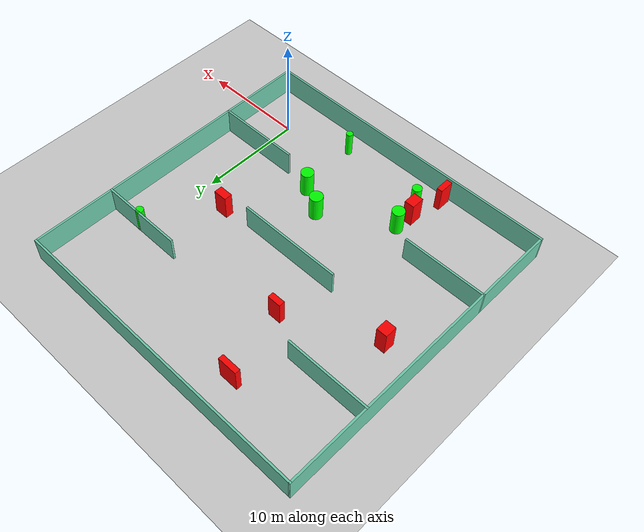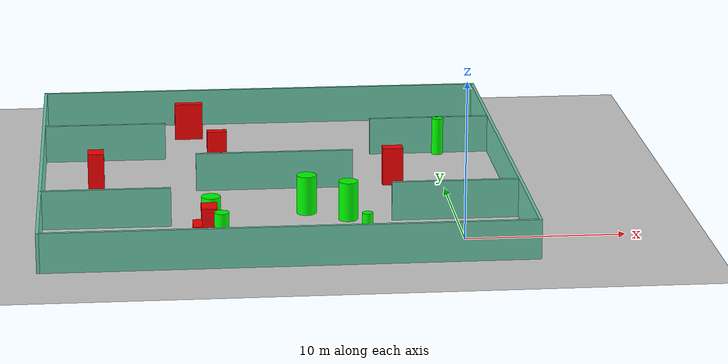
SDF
<sdf version="1.7">
 <world name="default">
  <light name="sun" type="directional">
   <pose>0 0 10 0 -0 0</pose>
   <diffuse>0.8 0.8 0.8 1</diffuse>
   <specular>0.2 0.2 0.2 1</specular>
   <attenuation>
    <range>1000</range>
    <constant>0.9</constant>
    <linear>0.01</linear>
    <quadratic>0.001</quadratic>
   </attenuation>
   <direction>-0.5 0.1 -0.9</direction>
   <spot><inner_angle>0</inner_angle><outer_angle>0</outer_angle><falloff>0</falloff></spot>
  </light>
  <model name="ground_plane">
   <static>1</static>
   <link name="link">
    <collision name="collision">
     <geometry><plane><normal>0 0 1</normal><size>100 100</size></plane></geometry>
     <surface>
      <contact><collide_bitmask>65535</collide_bitmask></contact>
      <friction><ode><mu>100</mu><mu2>50</mu2></ode></friction>
     </surface>
    </collision>
    <visual name="visual">
     <cast_shadows>0</cast_shadows>
     <geometry><plane><normal>0 0 1</normal><size>100 100</size></plane></geometry>
     <material>
      <script><uri>file://media/materials/scripts/gazebo.material</uri><name>Gazebo/Grey</name></script>
     </material>
    </visual>
   </link>
  </model>
  <gravity>0 0 -9.8</gravity>
  <magnetic_field>6e-06 2.3e-05 -4.2e-05</magnetic_field>
  <atmosphere type="adiabatic"/>
  <physics type="ode">
   <max_step_size>0.001</max_step_size>
   <real_time_factor>1</real_time_factor>
   <real_time_update_rate>1000</real_time_update_rate>
  </physics>
  <scene><ambient>0.4 0.4 0.4 1</ambient><background>0.7 0.7 0.7 1</background><shadows>1</shadows></scene>
  <spherical_coordinates>
   <surface_model>EARTH_WGS84</surface_model>
   <latitude_deg>0</latitude_deg>
   <longitude_deg>0</longitude_deg>
   <elevation>0</elevation>
   <heading_deg>0</heading_deg>
  </spherical_coordinates>
  <model name="my_base_walls">
   <link name="Wall_10">
    <collision name="Wall_10_Collision">
     <geometry><box><size>8.2 0.2 2.5</size></box></geometry>
     <pose>0 0 1.25 0 -0 0</pose>
    </collision>
    <visual name="Wall_10_Visual">
     <pose>0 0 1.25 0 -0 0</pose>
     <geometry><box><size>8.2 0.2 2.5</size></box></geometry>
     <material>
      <script><uri>file://media/materials/scripts/gazebo.material</uri><name>Gazebo/Grey</name></script>
      <ambient>0.435294 0.796078 0.67451 1</ambient>
     </material>
     <meta><layer>0</layer></meta>
    </visual>
    <pose>-11 -7 0 0 -0 0</pose>
   </link>
   <link name="Wall_12">
    <collision name="Wall_12_Collision">
     <geometry><box><size>8.2 0.2 2.5</size></box></geometry>
     <pose>0 0 1.25 0 -0 0</pose>
    </collision>
    <visual name="Wall_12_Visual">
     <pose>0 0 1.25 0 -0 0</pose>
     <geometry><box><size>8.2 0.2 2.5</size></box></geometry>
     <material>
      <script><uri>file://media/materials/scripts/gazebo.material</uri><name>Gazebo/Grey</name></script>
      <ambient>0.435294 0.796078 0.67451 1</ambient>
     </material>
     <meta><layer>0</layer></meta>
    </visual>
    <pose>-11 7 0 0 -0 0</pose>
   </link>
   <link name="Wall_14">
    <collision name="Wall_14_Collision">
     <geometry><box><size>8.2 0.2 2.5</size></box></geometry>
     <pose>0 0 1.25 0 -0 0</pose>
    </collision>
    <visual name="Wall_14_Visual">
     <pose>0 0 1.25 0 -0 0</pose>
     <geometry><box><size>8.2 0.2 2.5</size></box></geometry>
     <material>
      <script><uri>file://media/materials/scripts/gazebo.material</uri><name>Gazebo/Grey</name></script>
      <ambient>0.435294 0.796078 0.67451 1</ambient>
     </material>
     <meta><layer>0</layer></meta>
    </visual>
    <pose>11 7 0 0 -0 3.14159</pose>
   </link>
   <link name="Wall_16">
    <collision name="Wall_16_Collision">
     <geometry><box><size>10.2 0.2 2.5</size></box></geometry>
     <pose>0 0 1.25 0 -0 0</pose>
    </collision>
    <visual name="Wall_16_Visual">
     <pose>0 0 1.25 0 -0 0</pose>
     <geometry><box><size>10.2 0.2 2.5</size></box></geometry>
     <material>
      <script><uri>file://media/materials/scripts/gazebo.material</uri><name>Gazebo/Grey</name></script>
      <ambient>0.435294 0.796078 0.67451 1</ambient>
     </material>
     <meta><layer>0</layer></meta>
    </visual>
    <pose>0 0 0 0 -0 3.14159</pose>
   </link>
   <link name="Wall_2">
    <collision name="Wall_2_Collision">
     <geometry><box><size>30.2 0.2 2.5</size></box></geometry>
     <pose>0 0 1.25 0 -0 0</pose>
    </collision>
    <visual name="Wall_2_Visual">
     <pose>0 0 1.25 0 -0 0</pose>
     <geometry><box><size>30.2 0.2 2.5</size></box></geometry>
     <material>
      <script><uri>file://media/materials/scripts/gazebo.material</uri><name>Gazebo/Grey</name></script>
      <ambient>0.435294 0.796078 0.67451 1</ambient>
     </material>
     <meta><layer>0</layer></meta>
    </visual>
    <pose>0 -15 0 0 -0 3.14159</pose>
   </link>
   <link name="Wall_3">
    <collision name="Wall_3_Collision">
     <geometry><box><size>30.2 0.2 2.5</size></box></geometry>
     <pose>0 0 1.25 0 -0 0</pose>
    </collision>
    <visual name="Wall_3_Visual">
     <pose>0 0 1.25 0 -0 0</pose>
     <geometry><box><size>30.2 0.2 2.5</size></box></geometry>
     <material>
      <script><uri>file://media/materials/scripts/gazebo.material</uri><name>Gazebo/Grey</name></script>
      <ambient>0.435294 0.796078 0.67451 1</ambient>
     </material>
     <meta><layer>0</layer></meta>
    </visual>
    <pose>-15 0 0 0 -0 1.5708</pose>
   </link>
   <link name="Wall_4">
    <collision name="Wall_4_Collision">
     <geometry><box><size>30.2 0.2 2.5</size></box></geometry>
     <pose>0 0 1.25 0 -0 0</pose>
    </collision>
    <visual name="Wall_4_Visual">
     <pose>0 0 1.25 0 -0 0</pose>
     <geometry><box><size>30.2 0.2 2.5</size></box></geometry>
     <material>
      <script><uri>file://media/materials/scripts/gazebo.material</uri><name>Gazebo/Grey</name></script>
      <ambient>0.435294 0.796078 0.67451 1</ambient>
     </material>
     <meta><layer>0</layer></meta>
    </visual>
    <pose>0 15 0 0 -0 0</pose>
   </link>
   <link name="Wall_6">
    <collision name="Wall_6_Collision">
     <geometry><box><size>30.2 0.2 2.5</size></box></geometry>
     <pose>0 0 1.25 0 -0 0</pose>
    </collision>
    <visual name="Wall_6_Visual">
     <pose>0 0 1.25 0 -0 0</pose>
     <geometry><box><size>30.2 0.2 2.5</size></box></geometry>
     <material>
      <script><uri>file://media/materials/scripts/gazebo.material</uri><name>Gazebo/Grey</name></script>
      <ambient>0.435294 0.796078 0.67451 1</ambient>
     </material>
     <meta><layer>0</layer></meta>
    </visual>
    <pose>15 0 0 0 -0 1.5708</pose>
   </link>
   <link name="Wall_8">
    <collision name="Wall_8_Collision">
     <geometry><box><size>8.2 0.2 2.5</size></box></geometry>
     <pose>0 0 1.25 0 -0 0</pose>
    </collision>
    <visual name="Wall_8_Visual">
     <pose>0 0 1.25 0 -0 0</pose>
     <geometry><box><size>8.2 0.2 2.5</size></box></geometry>
     <material>
      <script><uri>file://media/materials/scripts/gazebo.material</uri><name>Gazebo/Grey</name></script>
      <ambient>0.435294 0.796078 0.67451 1</ambient>
     </material>
     <meta><layer>0</layer></meta>
    </visual>
    <pose>11 -7 0 0 -0 3.14159</pose>
   </link>
   <static>1</static>
   <pose>-11 11 0 0 -0 0</pose>
  </model>
  <model name="cylinder1">
   <static>1</static>
   <link name="link">
    <inertial>
     <mass>1</mass>
     <inertia><ixx>0.5</ixx><ixy>0</ixy><ixz>0</ixz><iyy>0.5</iyy><iyz>0</iyz><izz>1</izz></inertia>
    </inertial>
    <collision name="collision">
     <geometry><cylinder><radius>0.6333798689166642</radius><length>2.5</length></cylinder></geometry>
    </collision>
    <visual name="visual">
     <geometry><cylinder><radius>0.6333798689166642</radius><length>2.5</length></cylinder></geometry>
     <material>
      <ambient>0 1 0 1</ambient>
      <diffuse>0 1 0 1</diffuse>
      <specular>0.1 0.1 0.1 1</specular>
      <emissive>0 0 0 0</emissive>
     </material>
    </visual>
   </link>
   <pose>-9.30854843294918 5.887704934235963 1.25 0 0 0</pose>
  </model>
  <model name="cylinder2">
   <static>1</static>
   <link name="link">
    <inertial>
     <mass>1</mass>
     <inertia><ixx>0.5</ixx><ixy>0</ixy><ixz>0</ixz><iyy>0.5</iyy><iyz>0</iyz><izz>1</izz></inertia>
    </inertial>
    <collision name="collision">
     <geometry><cylinder><radius>0.6153189174504883</radius><length>2.5</length></cylinder></geometry>
    </collision>
    <visual name="visual">
     <geometry><cylinder><radius>0.6153189174504883</radius><length>2.5</length></cylinder></geometry>
     <material>
      <ambient>0 1 0 1</ambient>
      <diffuse>0 1 0 1</diffuse>
      <specular>0.1 0.1 0.1 1</specular>
      <emissive>0 0 0 0</emissive>
     </material>
    </visual>
   </link>
   <pose>-6.7982153549134345 4.407898346043052 1.25 0 0 0</pose>
  </model>
  <model name="cylinder3">
   <static>1</static>
   <link name="link">
    <inertial>
     <mass>1</mass>
     <inertia><ixx>0.5</ixx><ixy>0</ixy><ixz>0</ixz><iyy>0.5</iyy><iyz>0</iyz><izz>1</izz></inertia>
    </inertial>
    <collision name="collision">
     <geometry><cylinder><radius>0.3852100350286981</radius><length>2.5</length></cylinder></geometry>
    </collision>
    <visual name="visual">
     <geometry><cylinder><radius>0.3852100350286981</radius><length>2.5</length></cylinder></geometry>
     <material>
      <ambient>0 1 0 1</ambient>
      <diffuse>0 1 0 1</diffuse>
      <specular>0.1 0.1 0.1 1</specular>
      <emissive>0 0 0 0</emissive>
     </material>
    </visual>
   </link>
   <pose>0.4844502221449041 17.736608398131256 1.25 0 0 0</pose>
  </model>
  <model name="cylinder4">
   <static>1</static>
   <link name="link">
    <inertial>
     <mass>1</mass>
     <inertia><ixx>0.5</ixx><ixy>0</ixy><ixz>0</ixz><iyy>0.5</iyy><iyz>0</iyz><izz>1</izz></inertia>
    </inertial>
    <collision name="collision">
     <geometry><cylinder><radius>0.45133356815688225</radius><length>2.5</length></cylinder></geometry>
    </collision>
    <visual name="visual">
     <geometry><cylinder><radius>0.45133356815688225</radius><length>2.5</length></cylinder></geometry>
     <material>
      <ambient>0 1 0 1</ambient>
      <diffuse>0 1 0 1</diffuse>
      <specular>0.1 0.1 0.1 1</specular>
      <emissive>0 0 0 0</emissive>
     </material>
    </visual>
   </link>
   <pose>-14.969335437396126 -1.0590038748426776 1.25 0 0 0</pose>
  </model>
  <model name="cylinder5">
   <static>1</static>
   <link name="link">
    <inertial>
     <mass>1</mass>
     <inertia><ixx>0.5</ixx><ixy>0</ixy><ixz>0</ixz><iyy>0.5</iyy><iyz>0</iyz><izz>1</izz></inertia>
    </inertial>
    <collision name="collision">
     <geometry><cylinder><radius>0.32344314872865304</radius><length>2.5</length></cylinder></geometry>
    </collision>
    <visual name="visual">
     <geometry><cylinder><radius>0.32344314872865304</radius><length>2.5</length></cylinder></geometry>
     <material>
      <ambient>0 1 0 1</ambient>
      <diffuse>0 1 0 1</diffuse>
      <specular>0.1 0.1 0.1 1</specular>
      <emissive>0 0 0 0</emissive>
     </material>
    </visual>
   </link>
   <pose>-6.201958091311663 -1.8668927717356185 1.25 0 0 0</pose>
  </model>
  <model name="cylinder6">
   <static>1</static>
   <link name="link">
    <inertial>
     <mass>1</mass>
     <inertia><ixx>0.5</ixx><ixy>0</ixy><ixz>0</ixz><iyy>0.5</iyy><iyz>0</iyz><izz>1</izz></inertia>
    </inertial>
    <collision name="collision">
     <geometry><cylinder><radius>0.5969653916276436</radius><length>2.5</length></cylinder></geometry>
    </collision>
    <visual name="visual">
     <geometry><cylinder><radius>0.5969653916276436</radius><length>2.5</length></cylinder></geometry>
     <material>
      <ambient>0 1 0 1</ambient>
      <diffuse>0 1 0 1</diffuse>
      <specular>0.1 0.1 0.1 1</specular>
      <emissive>0 0 0 0</emissive>
     </material>
    </visual>
   </link>
   <pose>-15.501761790871349 2.093934898898681 1.25 0 0 0</pose>
  </model>
  <model name="box1">
   <static>1</static>
   <link name="link">
    <inertial>
     <mass>1</mass>
     <inertia><ixx>0.083</ixx><ixy>0</ixy><ixz>0</ixz><iyy>0.083</iyy><iyz>0</iyz><izz>0.083</izz></inertia>
    </inertial>
    <collision name="collision">
     <geometry><box><size>0.56251952032407 1.409873067767869 2.5</size></box></geometry>
    </collision>
    <visual name="visual">
     <geometry><box><size>0.56251952032407 1.409873067767869 2.5</size></box></geometry>
     <material>
      <ambient>1 0 0 1</ambient>
      <diffuse>1 0 0 1</diffuse>
      <specular>0.1 0.1 0.1 1</specular>
      <emissive>0 0 0 0</emissive>
     </material>
    </visual>
    <sensor name="my_contact" type="contact">
     <contact><collision>box_collision</collision><topic>__default_topic__</topic></contact>
    </sensor>
   </link>
   <pose>-16.494418212842817 -2.9715039943541286 1.25 0 0 0</pose>
  </model>
  <model name="box2">
   <static>1</static>
   <link name="link">
    <inertial>
     <mass>1</mass>
     <inertia><ixx>0.083</ixx><ixy>0</ixy><ixz>0</ixz><iyy>0.083</iyy><iyz>0</iyz><izz>0.083</izz></inertia>
    </inertial>
    <collision name="collision">
     <geometry><box><size>1.325845283168547 0.7914575591667803 2.5</size></box></geometry>
    </collision>
    <visual name="visual">
     <geometry><box><size>1.325845283168547 0.7914575591667803 2.5</size></box></geometry>
     <material>
      <ambient>1 0 0 1</ambient>
      <diffuse>1 0 0 1</diffuse>
      <specular>0.1 0.1 0.1 1</specular>
      <emissive>0 0 0 0</emissive>
     </material>
    </visual>
    <sensor name="my_contact" type="contact">
     <contact><collision>box_collision</collision><topic>__default_topic__</topic></contact>
    </sensor>
   </link>
   <pose>-3.2653605130949046 11.38015820359077 1.25 0 0 0</pose>
  </model>
  <model name="box3">
   <static>1</static>
   <link name="link">
    <inertial>
     <mass>1</mass>
     <inertia><ixx>0.083</ixx><ixy>0</ixy><ixz>0</ixz><iyy>0.083</iyy><iyz>0</iyz><izz>0.083</izz></inertia>
    </inertial>
    <collision name="collision">
     <geometry><box><size>1.8834915290084278 0.5128326390038771 2.5</size></box></geometry>
    </collision>
    <visual name="visual">
     <geometry><box><size>1.8834915290084278 0.5128326390038771 2.5</size></box></geometry>
     <material>
      <ambient>1 0 0 1</ambient>
      <diffuse>1 0 0 1</diffuse>
      <specular>0.1 0.1 0.1 1</specular>
      <emissive>0 0 0 0</emissive>
     </material>
    </visual>
    <sensor name="my_contact" type="contact">
     <contact><collision>box_collision</collision><topic>__default_topic__</topic></contact>
    </sensor>
   </link>
   <pose>-16.188785836784948 22.62529746986067 1.25 0 0 0</pose>
  </model>
  <model name="box4">
   <static>1</static>
   <link name="link">
    <inertial>
     <mass>1</mass>
     <inertia><ixx>0.083</ixx><ixy>0</ixy><ixz>0</ixz><iyy>0.083</iyy><iyz>0</iyz><izz>0.083</izz></inertia>
    </inertial>
    <collision name="collision">
     <geometry><box><size>1.3020284160063487 0.5749426695748062 2.5</size></box></geometry>
    </collision>
    <visual name="visual">
     <geometry><box><size>1.3020284160063487 0.5749426695748062 2.5</size></box></geometry>
     <material>
      <ambient>1 0 0 1</ambient>
      <diffuse>1 0 0 1</diffuse>
      <specular>0.1 0.1 0.1 1</specular>
      <emissive>0 0 0 0</emissive>
     </material>
    </visual>
    <sensor name="my_contact" type="contact">
     <contact><collision>box_collision</collision><topic>__default_topic__</topic></contact>
    </sensor>
   </link>
   <pose>-14.529891329612669 15.983096623542895 1.25 0 0 0</pose>
  </model>
  <model name="box5">
   <static>1</static>
   <link name="link">
    <inertial>
     <mass>1</mass>
     <inertia><ixx>0.083</ixx><ixy>0</ixy><ixz>0</ixz><iyy>0.083</iyy><iyz>0</iyz><izz>0.083</izz></inertia>
    </inertial>
    <collision name="collision">
     <geometry><box><size>0.9714415777885324 1.278832962365303 2.5</size></box></geometry>
    </collision>
    <visual name="visual">
     <geometry><box><size>0.9714415777885324 1.278832962365303 2.5</size></box></geometry>
     <material>
      <ambient>1 0 0 1</ambient>
      <diffuse>1 0 0 1</diffuse>
      <specular>0.1 0.1 0.1 1</specular>
      <emissive>0 0 0 0</emissive>
     </material>
    </visual>
    <sensor name="my_contact" type="contact">
     <contact><collision>box_collision</collision><topic>__default_topic__</topic></contact>
    </sensor>
   </link>
   <pose>-15.671301049335785 0.24174551362393126 1.25 0 0 0</pose>
  </model>
  <model name="box6">
   <static>1</static>
   <link name="link">
    <inertial>
     <mass>1</mass>
     <inertia><ixx>0.083</ixx><ixy>0</ixy><ixz>0</ixz><iyy>0.083</iyy><iyz>0</iyz><izz>0.083</izz></inertia>
    </inertial>
    <collision name="collision">
     <geometry><box><size>1.0422132018974726 1.1411977003881906 2.5</size></box></geometry>
    </collision>
    <visual name="visual">
     <geometry><box><size>1.0422132018974726 1.1411977003881906 2.5</size></box></geometry>
     <material>
      <ambient>1 0 0 1</ambient>
      <diffuse>1 0 0 1</diffuse>
      <specular>0.1 0.1 0.1 1</specular>
      <emissive>0 0 0 0</emissive>
     </material>
    </visual>
    <sensor name="my_contact" type="contact">
     <contact><collision>box_collision</collision><topic>__default_topic__</topic></contact>
    </sensor>
   </link>
   <pose>-22.546574175501704 11.870698015150131 1.25 0 0 0</pose>
  </model>
 </world>
</sdf>
